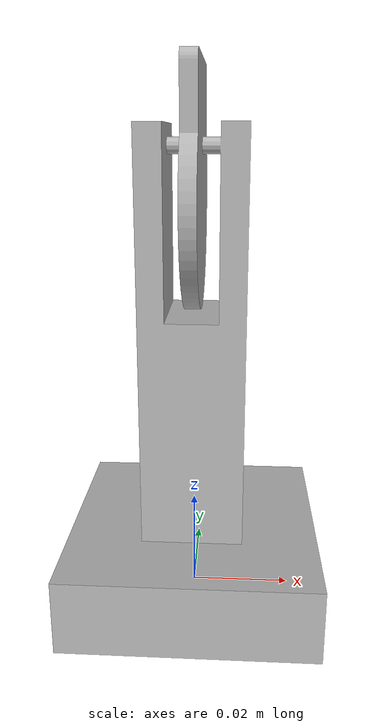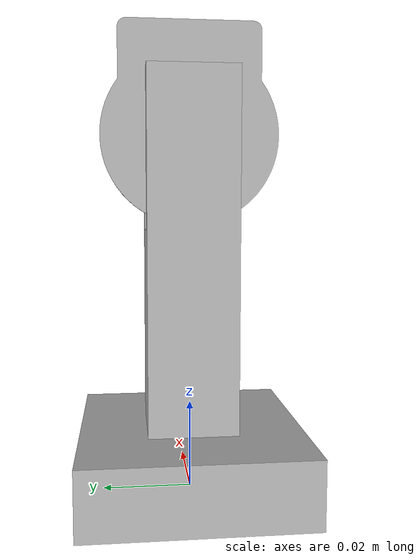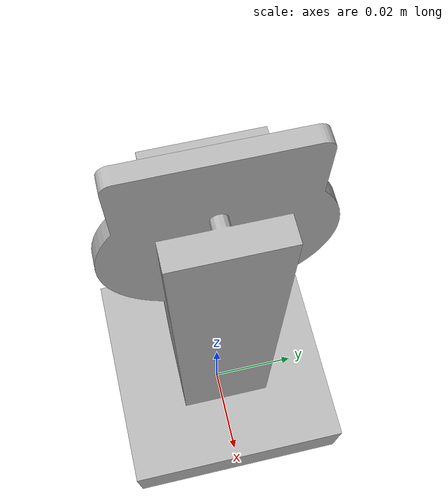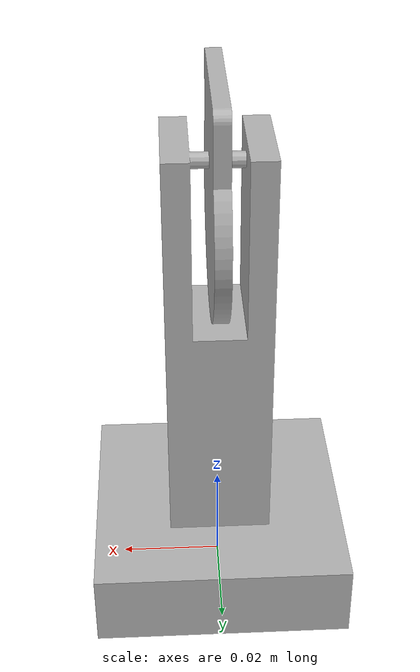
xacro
<?xml version="1.0" ?>
<robot name="check" xmlns:xacro="http://www.ros.org/wiki/xacro">

<xacro:include filename="$(find check_description)/urdf/materials.xacro" />
<xacro:include filename="$(find check_description)/urdf/check.trans" />
<xacro:include filename="$(find check_description)/urdf/check.gazebo" />
<link name="base_link">
  <inertial>
    <origin rpy="0 0 0" xyz="2.1830377130636334e-12 1.7715111342427914e-16 0.02405571225286486"/>
    <mass value="0.4911798844457979"/>
    <inertia ixx="0.000369" ixy="0.0" ixz="-0.0" iyy="0.00037" iyz="-0.0" izz="0.000137"/>
  </inertial>
  <visual>
    <origin rpy="0 0 0" xyz="0 0 0"/>
    <geometry>
      <mesh filename="package://check_description/meshes/base_link.stl" scale="0.001 0.001 0.001"/>
    </geometry>
    <material name="silver"/>
  </visual>
  <collision>
    <origin rpy="0 0 0" xyz="0 0 0"/>
    <geometry>
      <mesh filename="package://check_description/meshes/base_link.stl" scale="0.001 0.001 0.001"/>
    </geometry>
  </collision>
</link>

<link name="servo_actuator_1">
  <inertial>
    <origin rpy="0 0 0" xyz="-0.0015000000000000933 -1.1102230246251565e-16 -0.006732181040136093"/>
    <mass value="0.03497018571649247"/>
    <inertia ixx="9e-06" ixy="0.0" ixz="-0.0" iyy="5e-06" iyz="0.0" izz="4e-06"/>
  </inertial>
  <visual>
    <origin rpy="0 0 0" xyz="-0.0015 0.0 -0.091"/>
    <geometry>
      <mesh filename="package://check_description/meshes/servo_actuator_1.stl" scale="0.001 0.001 0.001"/>
    </geometry>
    <material name="silver"/>
  </visual>
  <collision>
    <origin rpy="0 0 0" xyz="-0.0015 0.0 -0.091"/>
    <geometry>
      <mesh filename="package://check_description/meshes/servo_actuator_1.stl" scale="0.001 0.001 0.001"/>
    </geometry>
  </collision>
</link>

<joint name="servo_joint" type="revolute">
  <origin rpy="0 0 0" xyz="0.0015 0.0 0.091"/>
  <parent link="base_link"/>
  <child link="servo_actuator_1"/>
  <axis xyz="-1.0 0.0 0.0"/>
  <limit effort="100" lower="0.0" upper="3.141593" velocity="100"/>
</joint>

</robot>

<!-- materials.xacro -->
<robot name="check" xmlns:xacro="http://www.ros.org/wiki/xacro" >

<material name="silver">
  <color rgba="0.700 0.700 0.700 1.000"/>
</material>

</robot>

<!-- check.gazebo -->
<robot name="check" xmlns:xacro="http://www.ros.org/wiki/xacro" >

<xacro:property name="body_color" value="Gazebo/Red" />
<xacro:property name="actuator_color" value="Gazebo/Blue" />

<gazebo>
  <plugin filename="libgazebo_ros_control.so" name="control"/>
</gazebo>
<gazebo reference="base_link">
  <material>${body_color}</material>
  <mu1>0.2</mu1>
  <mu2>0.2</mu2>
  <selfCollide>true</selfCollide>
  <gravity>true</gravity>
</gazebo>

<gazebo reference="servo_actuator_1">
  <material>${actuator_color}</material>
  <mu1>0.2</mu1>
  <mu2>0.2</mu2>
  <selfCollide>true</selfCollide>
</gazebo>

</robot>
